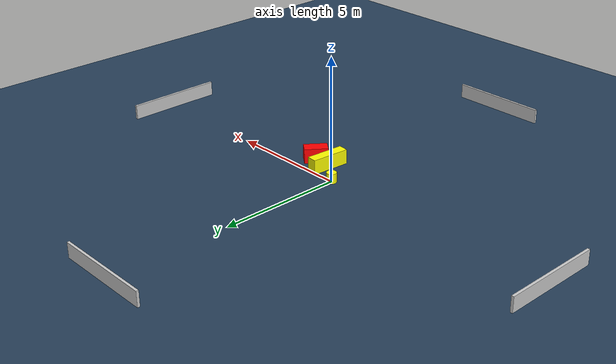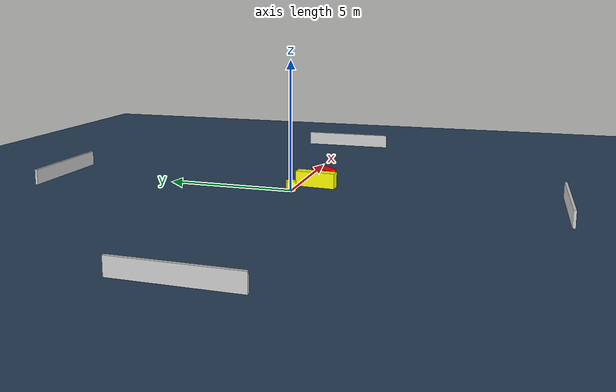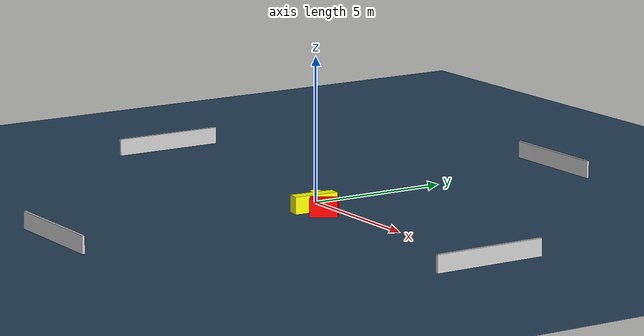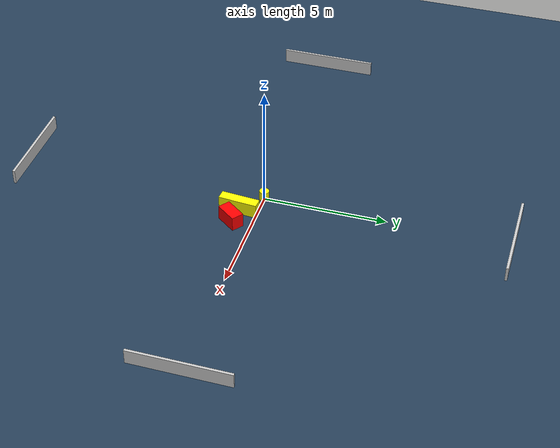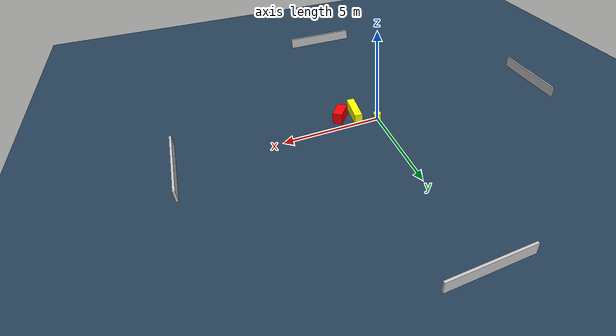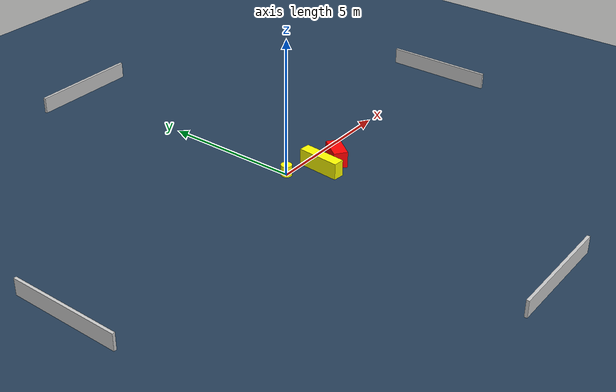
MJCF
<?xml version="1.0" ?>
<mujoco model="generated_environment">
  <option timestep="0.01" integrator="RK4" cone="elliptic"/>
  <default>
    <geom density="1"/>
  </default>
  <asset>
    <texture builtin="gradient" height="3072" name="skybox" rgb1="0.3 0.5 0.7" rgb2="0 0 0" type="skybox" width="512"/>
    <texture builtin="checker" height="300" name="groundplane" rgb1="0.2 0.3 0.4" rgb2="0.1 0.2 0.3" type="2d" width="300"/>
    <material name="groundplane" reflectance="0.2" texrepeat="5 5" texture="groundplane"/>
  </asset>
  <worldbody>
    <light dir="0 0 -1" directional="true" pos="0 0 1.5"/>
    <geom condim="3" friction="0.5 0.005 0.001" material="groundplane" name="floor" pos="0 0 0" size="0 0 0.05" type="plane"/>
    <body name="walls">
      <geom name="wall_1" condim="4" pos="-10.0 0.0 0.3" rgba="0.800000011920929 0.800000011920929 0.800000011920929 1.0" size="0.05 2.0 0.3" type="box"/>
      <geom name="wall_2" condim="4" pos="10.0 0.0 0.3" rgba="0.800000011920929 0.800000011920929 0.800000011920929 1.0" size="0.05 2.0 0.3" type="box"/>
      <geom name="wall_3" condim="4" pos="0.0 -10.0 0.3" rgba="0.800000011920929 0.800000011920929 0.800000011920929 1.0" size="2.0 0.05 0.3" type="box"/>
      <geom name="wall_4" condim="4" pos="0.0 10.0 0.3" rgba="0.800000011920929 0.800000011920929 0.800000011920929 1.0" size="2.0 0.05 0.3" type="box"/>
    </body>
    <body name="robot">
      <joint name="joint_x" type="slide" pos="0 0 0" axis="1 0 0"/>
      <joint name="joint_y" type="slide" pos="0 0 0" axis="0 1 0"/>
      <geom name="robot" type="cylinder" pos="0.0 0.0 0.2" size="0.2 0.2 0.0" mass="5.0" friction="1.0 0.005 0.0001" condim="4" rgba="1.0 1.0 0.0 1.0"/>
    </body>
    <body name="obstacle_1_movable">
      <geom name="obstacle_1_movable" condim="4" pos="0.9999693247157786 -0.7327232207504673 0.3" euler="0 0 355.3090311178878" friction="0.0 0.005 0.001" rgba="1.0 1.0 0.0 1.0" size="0.20384771193692386 0.7869189819007796 0.3" type="box" mass="0.1"/>
      <joint type="free"/>
    </body>
    <body name="obstacle_2_static">
      <geom name="obstacle_2_static" condim="4" pos="1.7706732936882033 -0.8284671736907816 0.3" euler="0 0 142.8955428411262" friction="0.0 0.005 0.001" rgba="1.0 0.0 0.0 1.0" size="0.2538314129177231 0.4726417376717266 0.3" type="box"/>
    </body>
  </worldbody>
  <actuator>
    <motor name="actuator_x" joint="joint_x" gear="1" ctrlrange="-1 1"/>
    <motor name="actuator_y" joint="joint_y" gear="1" ctrlrange="-1 1"/>
  </actuator>
</mujoco>
